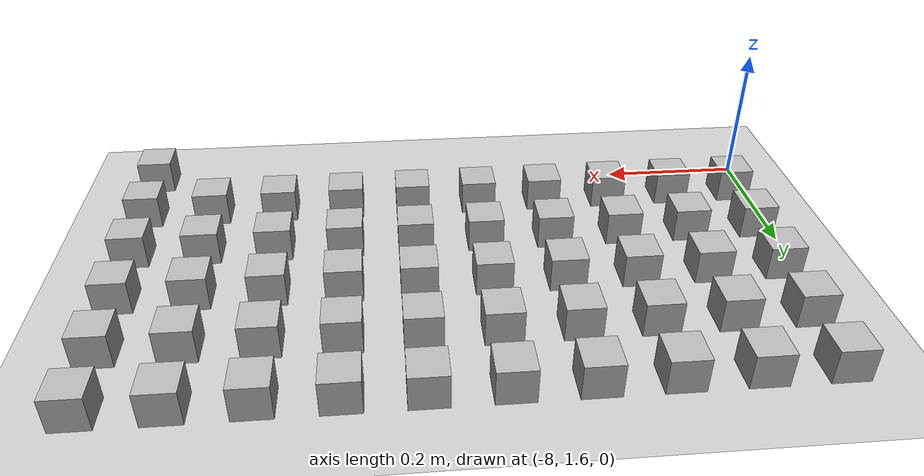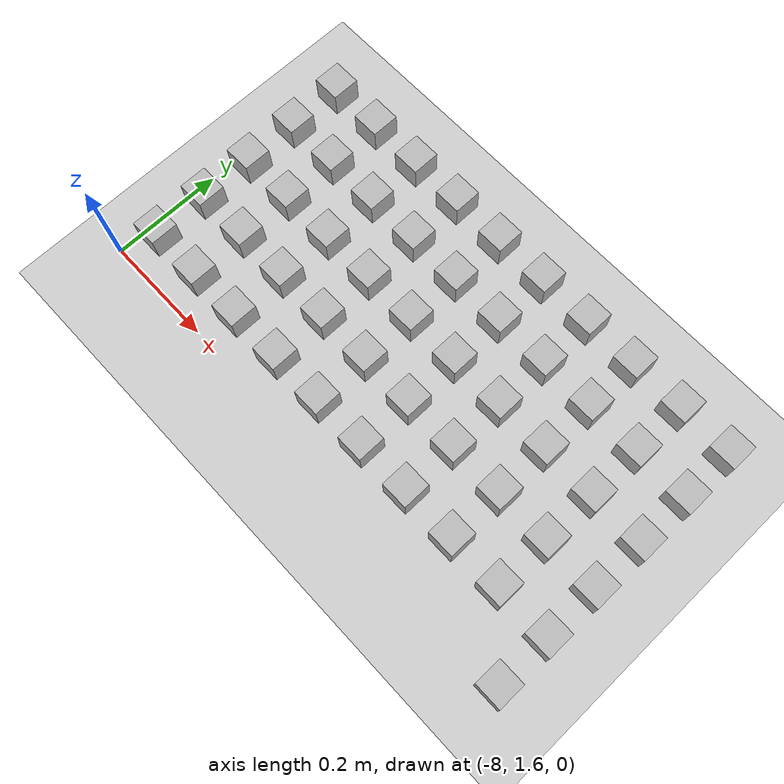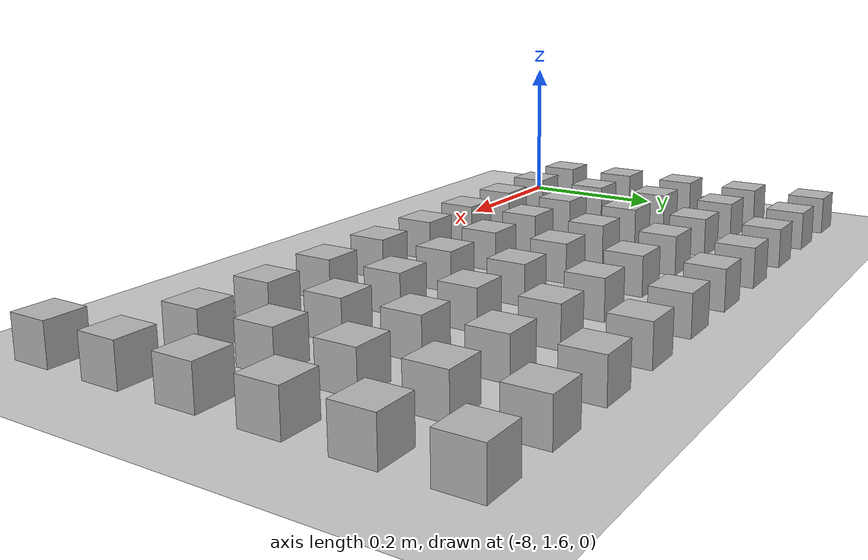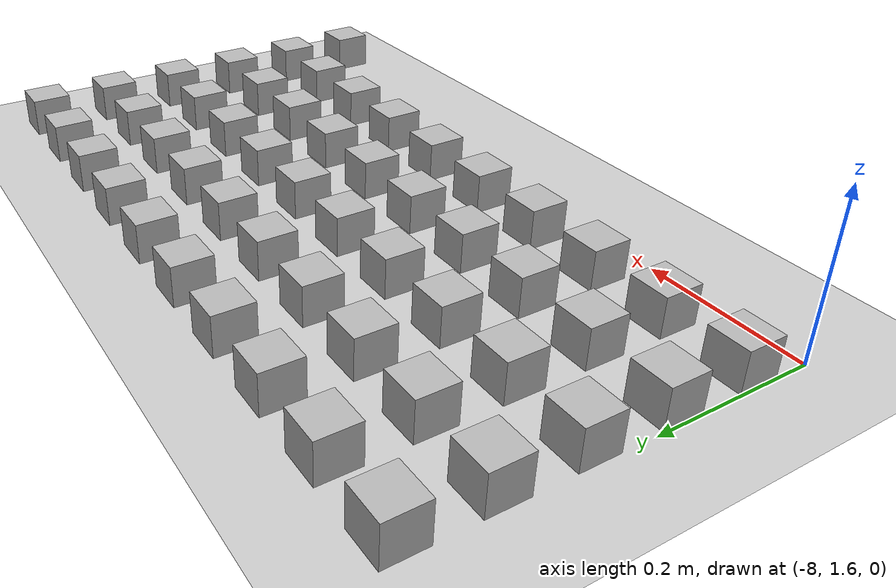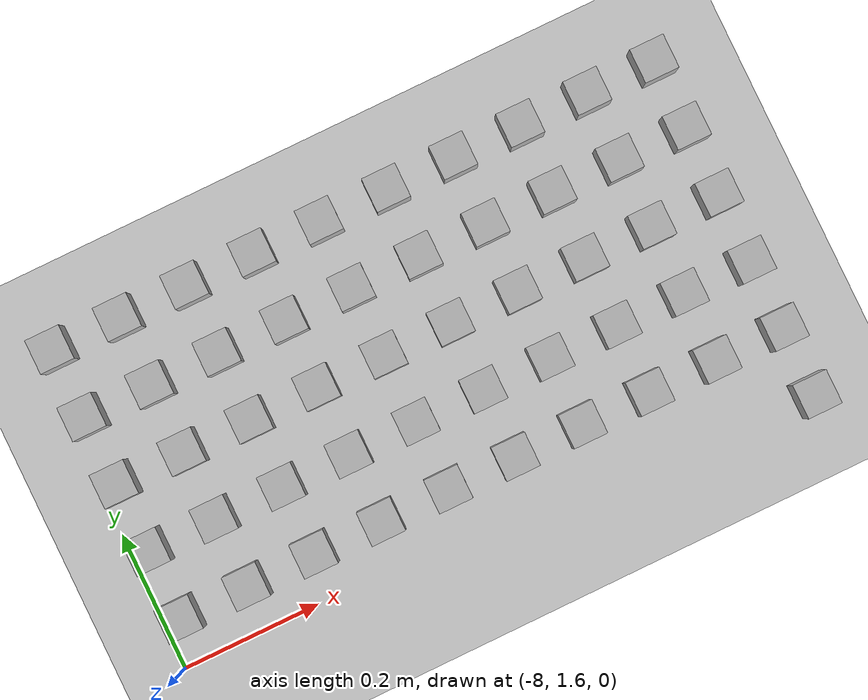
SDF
<sdf version="1.4">
 <world name="default">
  <model name="ground_plane">
   <static>1</static>
   <link name="link">
    <collision name="collision">
     <geometry><plane><normal>0 0 1</normal><size>100 100</size></plane></geometry>
     <surface><friction><ode><mu>100</mu><mu2>50</mu2></ode></friction></surface>
    </collision>
    <visual name="visual">
     <cast_shadows>0</cast_shadows>
     <geometry><plane><normal>0 0 1</normal><size>100 100</size></plane></geometry>
     <material>
      <script><uri>file://media/materials/scripts/gazebo.material</uri><name>Gazebo/Grey</name></script>
     </material>
    </visual>
    <velocity_decay><linear>0</linear><angular>0</angular></velocity_decay>
   </link>
  </model>
  <model name="at175">
   <static>0</static>
   <link name="link">
    <inertial>
     <mass>0.01</mass>
     <inertia><ixx>4e-05</ixx><ixy>0</ixy><ixz>0</ixz><iyy>4e-05</iyy><iyz>0</iyz><izz>4e-05</izz></inertia>
    </inertial>
    <visual name="visual">
     <geometry><box><size>0.05 0.05 0.05</size></box></geometry>
     <material>
      <script>
       <uri>model://at0/materials/scripts</uri>
       <uri>model://at0/materials/textures</uri>
       <name>at0/Diffuse</name>
      </script>
     </material>
    </visual>
    <collision name="collision">
     <geometry><box><size>0.05 0.05 0.05</size></box></geometry>
     <surface><friction><ode><mu>0.8</mu><mu2>0.7</mu2></ode></friction></surface>
    </collision>
    <velocity_decay><linear>0</linear><angular>0</angular></velocity_decay>
   </link>
   <pose>-7.07385 1.56515 0.025 0 -0 0</pose>
  </model>
  <model name="at182">
   <static>0</static>
   <link name="link">
    <inertial>
     <mass>0.01</mass>
     <inertia><ixx>4e-05</ixx><ixy>0</ixy><ixz>0</ixz><iyy>4e-05</iyy><iyz>0</iyz><izz>4e-05</izz></inertia>
    </inertial>
    <visual name="visual">
     <geometry><box><size>0.05 0.05 0.05</size></box></geometry>
     <material>
      <script>
       <uri>model://at0/materials/scripts</uri>
       <uri>model://at0/materials/textures</uri>
       <name>at0/Diffuse</name>
      </script>
     </material>
    </visual>
    <collision name="collision">
     <geometry><box><size>0.05 0.05 0.05</size></box></geometry>
     <surface><friction><ode><mu>0.8</mu><mu2>0.7</mu2></ode></friction></surface>
    </collision>
    <velocity_decay><linear>0</linear><angular>0</angular></velocity_decay>
   </link>
   <pose>-7.97385 1.66515 0.025 0 -0 0</pose>
  </model>
  <model name="at183">
   <static>0</static>
   <link name="link">
    <inertial>
     <mass>0.01</mass>
     <inertia><ixx>4e-05</ixx><ixy>0</ixy><ixz>0</ixz><iyy>4e-05</iyy><iyz>0</iyz><izz>4e-05</izz></inertia>
    </inertial>
    <visual name="visual">
     <geometry><box><size>0.05 0.05 0.05</size></box></geometry>
     <material>
      <script>
       <uri>model://at0/materials/scripts</uri>
       <uri>model://at0/materials/textures</uri>
       <name>at0/Diffuse</name>
      </script>
     </material>
    </visual>
    <collision name="collision">
     <geometry><box><size>0.05 0.05 0.05</size></box></geometry>
     <surface><friction><ode><mu>0.8</mu><mu2>0.7</mu2></ode></friction></surface>
    </collision>
    <velocity_decay><linear>0</linear><angular>0</angular></velocity_decay>
   </link>
   <pose>-7.87385 1.66515 0.025 0 -0 0</pose>
  </model>
  <model name="at184">
   <static>0</static>
   <link name="link">
    <inertial>
     <mass>0.01</mass>
     <inertia><ixx>4e-05</ixx><ixy>0</ixy><ixz>0</ixz><iyy>4e-05</iyy><iyz>0</iyz><izz>4e-05</izz></inertia>
    </inertial>
    <visual name="visual">
     <geometry><box><size>0.05 0.05 0.05</size></box></geometry>
     <material>
      <script>
       <uri>model://at0/materials/scripts</uri>
       <uri>model://at0/materials/textures</uri>
       <name>at0/Diffuse</name>
      </script>
     </material>
    </visual>
    <collision name="collision">
     <geometry><box><size>0.05 0.05 0.05</size></box></geometry>
     <surface><friction><ode><mu>0.8</mu><mu2>0.7</mu2></ode></friction></surface>
    </collision>
    <velocity_decay><linear>0</linear><angular>0</angular></velocity_decay>
   </link>
   <pose>-7.77385 1.66515 0.025 0 -0 0</pose>
  </model>
  <model name="at185">
   <static>0</static>
   <link name="link">
    <inertial>
     <mass>0.01</mass>
     <inertia><ixx>4e-05</ixx><ixy>0</ixy><ixz>0</ixz><iyy>4e-05</iyy><iyz>0</iyz><izz>4e-05</izz></inertia>
    </inertial>
    <visual name="visual">
     <geometry><box><size>0.05 0.05 0.05</size></box></geometry>
     <material>
      <script>
       <uri>model://at0/materials/scripts</uri>
       <uri>model://at0/materials/textures</uri>
       <name>at0/Diffuse</name>
      </script>
     </material>
    </visual>
    <collision name="collision">
     <geometry><box><size>0.05 0.05 0.05</size></box></geometry>
     <surface><friction><ode><mu>0.8</mu><mu2>0.7</mu2></ode></friction></surface>
    </collision>
    <velocity_decay><linear>0</linear><angular>0</angular></velocity_decay>
   </link>
   <pose>-7.67385 1.66515 0.025 0 -0 0</pose>
  </model>
  <model name="at186">
   <static>0</static>
   <link name="link">
    <inertial>
     <mass>0.01</mass>
     <inertia><ixx>4e-05</ixx><ixy>0</ixy><ixz>0</ixz><iyy>4e-05</iyy><iyz>0</iyz><izz>4e-05</izz></inertia>
    </inertial>
    <visual name="visual">
     <geometry><box><size>0.05 0.05 0.05</size></box></geometry>
     <material>
      <script>
       <uri>model://at0/materials/scripts</uri>
       <uri>model://at0/materials/textures</uri>
       <name>at0/Diffuse</name>
      </script>
     </material>
    </visual>
    <collision name="collision">
     <geometry><box><size>0.05 0.05 0.05</size></box></geometry>
     <surface><friction><ode><mu>0.8</mu><mu2>0.7</mu2></ode></friction></surface>
    </collision>
    <velocity_decay><linear>0</linear><angular>0</angular></velocity_decay>
   </link>
   <pose>-7.57385 1.66515 0.025 0 -0 0</pose>
  </model>
  <model name="at187">
   <static>0</static>
   <link name="link">
    <inertial>
     <mass>0.01</mass>
     <inertia><ixx>4e-05</ixx><ixy>0</ixy><ixz>0</ixz><iyy>4e-05</iyy><iyz>0</iyz><izz>4e-05</izz></inertia>
    </inertial>
    <visual name="visual">
     <geometry><box><size>0.05 0.05 0.05</size></box></geometry>
     <material>
      <script>
       <uri>model://at0/materials/scripts</uri>
       <uri>model://at0/materials/textures</uri>
       <name>at0/Diffuse</name>
      </script>
     </material>
    </visual>
    <collision name="collision">
     <geometry><box><size>0.05 0.05 0.05</size></box></geometry>
     <surface><friction><ode><mu>0.8</mu><mu2>0.7</mu2></ode></friction></surface>
    </collision>
    <velocity_decay><linear>0</linear><angular>0</angular></velocity_decay>
   </link>
   <pose>-7.47385 1.66515 0.025 0 -0 0</pose>
  </model>
  <model name="at188">
   <static>0</static>
   <link name="link">
    <inertial>
     <mass>0.01</mass>
     <inertia><ixx>4e-05</ixx><ixy>0</ixy><ixz>0</ixz><iyy>4e-05</iyy><iyz>0</iyz><izz>4e-05</izz></inertia>
    </inertial>
    <visual name="visual">
     <geometry><box><size>0.05 0.05 0.05</size></box></geometry>
     <material>
      <script>
       <uri>model://at0/materials/scripts</uri>
       <uri>model://at0/materials/textures</uri>
       <name>at0/Diffuse</name>
      </script>
     </material>
    </visual>
    <collision name="collision">
     <geometry><box><size>0.05 0.05 0.05</size></box></geometry>
     <surface><friction><ode><mu>0.8</mu><mu2>0.7</mu2></ode></friction></surface>
    </collision>
    <velocity_decay><linear>0</linear><angular>0</angular></velocity_decay>
   </link>
   <pose>-7.37385 1.66515 0.025 0 -0 0</pose>
  </model>
  <model name="at189">
   <static>0</static>
   <link name="link">
    <inertial>
     <mass>0.01</mass>
     <inertia><ixx>4e-05</ixx><ixy>0</ixy><ixz>0</ixz><iyy>4e-05</iyy><iyz>0</iyz><izz>4e-05</izz></inertia>
    </inertial>
    <visual name="visual">
     <geometry><box><size>0.05 0.05 0.05</size></box></geometry>
     <material>
      <script>
       <uri>model://at0/materials/scripts</uri>
       <uri>model://at0/materials/textures</uri>
       <name>at0/Diffuse</name>
      </script>
     </material>
    </visual>
    <collision name="collision">
     <geometry><box><size>0.05 0.05 0.05</size></box></geometry>
     <surface><friction><ode><mu>0.8</mu><mu2>0.7</mu2></ode></friction></surface>
    </collision>
    <velocity_decay><linear>0</linear><angular>0</angular></velocity_decay>
   </link>
   <pose>-7.27385 1.66515 0.025 0 -0 0</pose>
  </model>
  <model name="at190">
   <static>0</static>
   <link name="link">
    <inertial>
     <mass>0.01</mass>
     <inertia><ixx>4e-05</ixx><ixy>0</ixy><ixz>0</ixz><iyy>4e-05</iyy><iyz>0</iyz><izz>4e-05</izz></inertia>
    </inertial>
    <visual name="visual">
     <geometry><box><size>0.05 0.05 0.05</size></box></geometry>
     <material>
      <script>
       <uri>model://at0/materials/scripts</uri>
       <uri>model://at0/materials/textures</uri>
       <name>at0/Diffuse</name>
      </script>
     </material>
    </visual>
    <collision name="collision">
     <geometry><box><size>0.05 0.05 0.05</size></box></geometry>
     <surface><friction><ode><mu>0.8</mu><mu2>0.7</mu2></ode></friction></surface>
    </collision>
    <velocity_decay><linear>0</linear><angular>0</angular></velocity_decay>
   </link>
   <pose>-7.17385 1.66515 0.025 0 -0 0</pose>
  </model>
  <model name="at191">
   <static>0</static>
   <link name="link">
    <inertial>
     <mass>0.01</mass>
     <inertia><ixx>4e-05</ixx><ixy>0</ixy><ixz>0</ixz><iyy>4e-05</iyy><iyz>0</iyz><izz>4e-05</izz></inertia>
    </inertial>
    <visual name="visual">
     <geometry><box><size>0.05 0.05 0.05</size></box></geometry>
     <material>
      <script>
       <uri>model://at0/materials/scripts</uri>
       <uri>model://at0/materials/textures</uri>
       <name>at0/Diffuse</name>
      </script>
     </material>
    </visual>
    <collision name="collision">
     <geometry><box><size>0.05 0.05 0.05</size></box></geometry>
     <surface><friction><ode><mu>0.8</mu><mu2>0.7</mu2></ode></friction></surface>
    </collision>
    <velocity_decay><linear>0</linear><angular>0</angular></velocity_decay>
   </link>
   <pose>-7.07385 1.66515 0.025 0 -0 0</pose>
  </model>
  <model name="at198">
   <static>0</static>
   <link name="link">
    <inertial>
     <mass>0.01</mass>
     <inertia><ixx>4e-05</ixx><ixy>0</ixy><ixz>0</ixz><iyy>4e-05</iyy><iyz>0</iyz><izz>4e-05</izz></inertia>
    </inertial>
    <visual name="visual">
     <geometry><box><size>0.05 0.05 0.05</size></box></geometry>
     <material>
      <script>
       <uri>model://at0/materials/scripts</uri>
       <uri>model://at0/materials/textures</uri>
       <name>at0/Diffuse</name>
      </script>
     </material>
    </visual>
    <collision name="collision">
     <geometry><box><size>0.05 0.05 0.05</size></box></geometry>
     <surface><friction><ode><mu>0.8</mu><mu2>0.7</mu2></ode></friction></surface>
    </collision>
    <velocity_decay><linear>0</linear><angular>0</angular></velocity_decay>
   </link>
   <pose>-7.97385 1.76515 0.025 0 -0 0</pose>
  </model>
  <model name="at199">
   <static>0</static>
   <link name="link">
    <inertial>
     <mass>0.01</mass>
     <inertia><ixx>4e-05</ixx><ixy>0</ixy><ixz>0</ixz><iyy>4e-05</iyy><iyz>0</iyz><izz>4e-05</izz></inertia>
    </inertial>
    <visual name="visual">
     <geometry><box><size>0.05 0.05 0.05</size></box></geometry>
     <material>
      <script>
       <uri>model://at0/materials/scripts</uri>
       <uri>model://at0/materials/textures</uri>
       <name>at0/Diffuse</name>
      </script>
     </material>
    </visual>
    <collision name="collision">
     <geometry><box><size>0.05 0.05 0.05</size></box></geometry>
     <surface><friction><ode><mu>0.8</mu><mu2>0.7</mu2></ode></friction></surface>
    </collision>
    <velocity_decay><linear>0</linear><angular>0</angular></velocity_decay>
   </link>
   <pose>-7.87385 1.76515 0.025 0 -0 0</pose>
  </model>
  <model name="at200">
   <static>0</static>
   <link name="link">
    <inertial>
     <mass>0.01</mass>
     <inertia><ixx>4e-05</ixx><ixy>0</ixy><ixz>0</ixz><iyy>4e-05</iyy><iyz>0</iyz><izz>4e-05</izz></inertia>
    </inertial>
    <visual name="visual">
     <geometry><box><size>0.05 0.05 0.05</size></box></geometry>
     <material>
      <script>
       <uri>model://at0/materials/scripts</uri>
       <uri>model://at0/materials/textures</uri>
       <name>at0/Diffuse</name>
      </script>
     </material>
    </visual>
    <collision name="collision">
     <geometry><box><size>0.05 0.05 0.05</size></box></geometry>
     <surface><friction><ode><mu>0.8</mu><mu2>0.7</mu2></ode></friction></surface>
    </collision>
    <velocity_decay><linear>0</linear><angular>0</angular></velocity_decay>
   </link>
   <pose>-7.77385 1.76515 0.025 0 -0 0</pose>
  </model>
  <model name="at201">
   <static>0</static>
   <link name="link">
    <inertial>
     <mass>0.01</mass>
     <inertia><ixx>4e-05</ixx><ixy>0</ixy><ixz>0</ixz><iyy>4e-05</iyy><iyz>0</iyz><izz>4e-05</izz></inertia>
    </inertial>
    <visual name="visual">
     <geometry><box><size>0.05 0.05 0.05</size></box></geometry>
     <material>
      <script>
       <uri>model://at0/materials/scripts</uri>
       <uri>model://at0/materials/textures</uri>
       <name>at0/Diffuse</name>
      </script>
     </material>
    </visual>
    <collision name="collision">
     <geometry><box><size>0.05 0.05 0.05</size></box></geometry>
     <surface><friction><ode><mu>0.8</mu><mu2>0.7</mu2></ode></friction></surface>
    </collision>
    <velocity_decay><linear>0</linear><angular>0</angular></velocity_decay>
   </link>
   <pose>-7.67385 1.76515 0.025 0 -0 0</pose>
  </model>
  <model name="at202">
   <static>0</static>
   <link name="link">
    <inertial>
     <mass>0.01</mass>
     <inertia><ixx>4e-05</ixx><ixy>0</ixy><ixz>0</ixz><iyy>4e-05</iyy><iyz>0</iyz><izz>4e-05</izz></inertia>
    </inertial>
    <visual name="visual">
     <geometry><box><size>0.05 0.05 0.05</size></box></geometry>
     <material>
      <script>
       <uri>model://at0/materials/scripts</uri>
       <uri>model://at0/materials/textures</uri>
       <name>at0/Diffuse</name>
      </script>
     </material>
    </visual>
    <collision name="collision">
     <geometry><box><size>0.05 0.05 0.05</size></box></geometry>
     <surface><friction><ode><mu>0.8</mu><mu2>0.7</mu2></ode></friction></surface>
    </collision>
    <velocity_decay><linear>0</linear><angular>0</angular></velocity_decay>
   </link>
   <pose>-7.57385 1.76515 0.025 0 -0 0</pose>
  </model>
  <model name="at203">
   <static>0</static>
   <link name="link">
    <inertial>
     <mass>0.01</mass>
     <inertia><ixx>4e-05</ixx><ixy>0</ixy><ixz>0</ixz><iyy>4e-05</iyy><iyz>0</iyz><izz>4e-05</izz></inertia>
    </inertial>
    <visual name="visual">
     <geometry><box><size>0.05 0.05 0.05</size></box></geometry>
     <material>
      <script>
       <uri>model://at0/materials/scripts</uri>
       <uri>model://at0/materials/textures</uri>
       <name>at0/Diffuse</name>
      </script>
     </material>
    </visual>
    <collision name="collision">
     <geometry><box><size>0.05 0.05 0.05</size></box></geometry>
     <surface><friction><ode><mu>0.8</mu><mu2>0.7</mu2></ode></friction></surface>
    </collision>
    <velocity_decay><linear>0</linear><angular>0</angular></velocity_decay>
   </link>
   <pose>-7.47385 1.76515 0.025 0 -0 0</pose>
  </model>
  <model name="at204">
   <static>0</static>
   <link name="link">
    <inertial>
     <mass>0.01</mass>
     <inertia><ixx>4e-05</ixx><ixy>0</ixy><ixz>0</ixz><iyy>4e-05</iyy><iyz>0</iyz><izz>4e-05</izz></inertia>
    </inertial>
    <visual name="visual">
     <geometry><box><size>0.05 0.05 0.05</size></box></geometry>
     <material>
      <script>
       <uri>model://at0/materials/scripts</uri>
       <uri>model://at0/materials/textures</uri>
       <name>at0/Diffuse</name>
      </script>
     </material>
    </visual>
    <collision name="collision">
     <geometry><box><size>0.05 0.05 0.05</size></box></geometry>
     <surface><friction><ode><mu>0.8</mu><mu2>0.7</mu2></ode></friction></surface>
    </collision>
    <velocity_decay><linear>0</linear><angular>0</angular></velocity_decay>
   </link>
   <pose>-7.37385 1.76515 0.025 0 -0 0</pose>
  </model>
  <model name="at205">
   <static>0</static>
   <link name="link">
    <inertial>
     <mass>0.01</mass>
     <inertia><ixx>4e-05</ixx><ixy>0</ixy><ixz>0</ixz><iyy>4e-05</iyy><iyz>0</iyz><izz>4e-05</izz></inertia>
    </inertial>
    <visual name="visual">
     <geometry><box><size>0.05 0.05 0.05</size></box></geometry>
     <material>
      <script>
       <uri>model://at0/materials/scripts</uri>
       <uri>model://at0/materials/textures</uri>
       <name>at0/Diffuse</name>
      </script>
     </material>
    </visual>
    <collision name="collision">
     <geometry><box><size>0.05 0.05 0.05</size></box></geometry>
     <surface><friction><ode><mu>0.8</mu><mu2>0.7</mu2></ode></friction></surface>
    </collision>
    <velocity_decay><linear>0</linear><angular>0</angular></velocity_decay>
   </link>
   <pose>-7.27385 1.76515 0.025 0 -0 0</pose>
  </model>
  <model name="at206">
   <static>0</static>
   <link name="link">
    <inertial>
     <mass>0.01</mass>
     <inertia><ixx>4e-05</ixx><ixy>0</ixy><ixz>0</ixz><iyy>4e-05</iyy><iyz>0</iyz><izz>4e-05</izz></inertia>
    </inertial>
    <visual name="visual">
     <geometry><box><size>0.05 0.05 0.05</size></box></geometry>
     <material>
      <script>
       <uri>model://at0/materials/scripts</uri>
       <uri>model://at0/materials/textures</uri>
       <name>at0/Diffuse</name>
      </script>
     </material>
    </visual>
    <collision name="collision">
     <geometry><box><size>0.05 0.05 0.05</size></box></geometry>
     <surface><friction><ode><mu>0.8</mu><mu2>0.7</mu2></ode></friction></surface>
    </collision>
    <velocity_decay><linear>0</linear><angular>0</angular></velocity_decay>
   </link>
   <pose>-7.17385 1.76515 0.025 0 -0 0</pose>
  </model>
  <model name="at207">
   <static>0</static>
   <link name="link">
    <inertial>
     <mass>0.01</mass>
     <inertia><ixx>4e-05</ixx><ixy>0</ixy><ixz>0</ixz><iyy>4e-05</iyy><iyz>0</iyz><izz>4e-05</izz></inertia>
    </inertial>
    <visual name="visual">
     <geometry><box><size>0.05 0.05 0.05</size></box></geometry>
     <material>
      <script>
       <uri>model://at0/materials/scripts</uri>
       <uri>model://at0/materials/textures</uri>
       <name>at0/Diffuse</name>
      </script>
     </material>
    </visual>
    <collision name="collision">
     <geometry><box><size>0.05 0.05 0.05</size></box></geometry>
     <surface><friction><ode><mu>0.8</mu><mu2>0.7</mu2></ode></friction></surface>
    </collision>
    <velocity_decay><linear>0</linear><angular>0</angular></velocity_decay>
   </link>
   <pose>-7.07385 1.76515 0.025 0 -0 0</pose>
  </model>
  <model name="at214">
   <static>0</static>
   <link name="link">
    <inertial>
     <mass>0.01</mass>
     <inertia><ixx>4e-05</ixx><ixy>0</ixy><ixz>0</ixz><iyy>4e-05</iyy><iyz>0</iyz><izz>4e-05</izz></inertia>
    </inertial>
    <visual name="visual">
     <geometry><box><size>0.05 0.05 0.05</size></box></geometry>
     <material>
      <script>
       <uri>model://at0/materials/scripts</uri>
       <uri>model://at0/materials/textures</uri>
       <name>at0/Diffuse</name>
      </script>
     </material>
    </visual>
    <collision name="collision">
     <geometry><box><size>0.05 0.05 0.05</size></box></geometry>
     <surface><friction><ode><mu>0.8</mu><mu2>0.7</mu2></ode></friction></surface>
    </collision>
    <velocity_decay><linear>0</linear><angular>0</angular></velocity_decay>
   </link>
   <pose>-7.97385 1.86515 0.025 0 -0 0</pose>
  </model>
  <model name="at215">
   <static>0</static>
   <link name="link">
    <inertial>
     <mass>0.01</mass>
     <inertia><ixx>4e-05</ixx><ixy>0</ixy><ixz>0</ixz><iyy>4e-05</iyy><iyz>0</iyz><izz>4e-05</izz></inertia>
    </inertial>
    <visual name="visual">
     <geometry><box><size>0.05 0.05 0.05</size></box></geometry>
     <material>
      <script>
       <uri>model://at0/materials/scripts</uri>
       <uri>model://at0/materials/textures</uri>
       <name>at0/Diffuse</name>
      </script>
     </material>
    </visual>
    <collision name="collision">
     <geometry><box><size>0.05 0.05 0.05</size></box></geometry>
     <surface><friction><ode><mu>0.8</mu><mu2>0.7</mu2></ode></friction></surface>
    </collision>
    <velocity_decay><linear>0</linear><angular>0</angular></velocity_decay>
   </link>
   <pose>-7.87385 1.86515 0.025 0 -0 0</pose>
  </model>
  <model name="at216">
   <static>0</static>
   <link name="link">
    <inertial>
     <mass>0.01</mass>
     <inertia><ixx>4e-05</ixx><ixy>0</ixy><ixz>0</ixz><iyy>4e-05</iyy><iyz>0</iyz><izz>4e-05</izz></inertia>
    </inertial>
    <visual name="visual">
     <geometry><box><size>0.05 0.05 0.05</size></box></geometry>
     <material>
      <script>
       <uri>model://at0/materials/scripts</uri>
       <uri>model://at0/materials/textures</uri>
       <name>at0/Diffuse</name>
      </script>
     </material>
    </visual>
    <collision name="collision">
     <geometry><box><size>0.05 0.05 0.05</size></box></geometry>
     <surface><friction><ode><mu>0.8</mu><mu2>0.7</mu2></ode></friction></surface>
    </collision>
    <velocity_decay><linear>0</linear><angular>0</angular></velocity_decay>
   </link>
   <pose>-7.77385 1.86515 0.025 0 -0 0</pose>
  </model>
  <model name="at217">
   <static>0</static>
   <link name="link">
    <inertial>
     <mass>0.01</mass>
     <inertia><ixx>4e-05</ixx><ixy>0</ixy><ixz>0</ixz><iyy>4e-05</iyy><iyz>0</iyz><izz>4e-05</izz></inertia>
    </inertial>
    <visual name="visual">
     <geometry><box><size>0.05 0.05 0.05</size></box></geometry>
     <material>
      <script>
       <uri>model://at0/materials/scripts</uri>
       <uri>model://at0/materials/textures</uri>
       <name>at0/Diffuse</name>
      </script>
     </material>
    </visual>
    <collision name="collision">
     <geometry><box><size>0.05 0.05 0.05</size></box></geometry>
     <surface><friction><ode><mu>0.8</mu><mu2>0.7</mu2></ode></friction></surface>
    </collision>
    <velocity_decay><linear>0</linear><angular>0</angular></velocity_decay>
   </link>
   <pose>-7.67385 1.86515 0.025 0 -0 0</pose>
  </model>
  <model name="at218">
   <static>0</static>
   <link name="link">
    <inertial>
     <mass>0.01</mass>
     <inertia><ixx>4e-05</ixx><ixy>0</ixy><ixz>0</ixz><iyy>4e-05</iyy><iyz>0</iyz><izz>4e-05</izz></inertia>
    </inertial>
    <visual name="visual">
     <geometry><box><size>0.05 0.05 0.05</size></box></geometry>
     <material>
      <script>
       <uri>model://at0/materials/scripts</uri>
       <uri>model://at0/materials/textures</uri>
       <name>at0/Diffuse</name>
      </script>
     </material>
    </visual>
    <collision name="collision">
     <geometry><box><size>0.05 0.05 0.05</size></box></geometry>
     <surface><friction><ode><mu>0.8</mu><mu2>0.7</mu2></ode></friction></surface>
    </collision>
    <velocity_decay><linear>0</linear><angular>0</angular></velocity_decay>
   </link>
   <pose>-7.57385 1.86515 0.025 0 -0 0</pose>
  </model>
  <model name="at219">
   <static>0</static>
   <link name="link">
    <inertial>
     <mass>0.01</mass>
     <inertia><ixx>4e-05</ixx><ixy>0</ixy><ixz>0</ixz><iyy>4e-05</iyy><iyz>0</iyz><izz>4e-05</izz></inertia>
    </inertial>
    <visual name="visual">
     <geometry><box><size>0.05 0.05 0.05</size></box></geometry>
     <material>
      <script>
       <uri>model://at0/materials/scripts</uri>
       <uri>model://at0/materials/textures</uri>
       <name>at0/Diffuse</name>
      </script>
     </material>
    </visual>
    <collision name="collision">
     <geometry><box><size>0.05 0.05 0.05</size></box></geometry>
     <surface><friction><ode><mu>0.8</mu><mu2>0.7</mu2></ode></friction></surface>
    </collision>
    <velocity_decay><linear>0</linear><angular>0</angular></velocity_decay>
   </link>
   <pose>-7.47385 1.86515 0.025 0 -0 0</pose>
  </model>
  <model name="at220">
   <static>0</static>
   <link name="link">
    <inertial>
     <mass>0.01</mass>
     <inertia><ixx>4e-05</ixx><ixy>0</ixy><ixz>0</ixz><iyy>4e-05</iyy><iyz>0</iyz><izz>4e-05</izz></inertia>
    </inertial>
    <visual name="visual">
     <geometry><box><size>0.05 0.05 0.05</size></box></geometry>
     <material>
      <script>
       <uri>model://at0/materials/scripts</uri>
       <uri>model://at0/materials/textures</uri>
       <name>at0/Diffuse</name>
      </script>
     </material>
    </visual>
    <collision name="collision">
     <geometry><box><size>0.05 0.05 0.05</size></box></geometry>
     <surface><friction><ode><mu>0.8</mu><mu2>0.7</mu2></ode></friction></surface>
    </collision>
    <velocity_decay><linear>0</linear><angular>0</angular></velocity_decay>
   </link>
   <pose>-7.37385 1.86515 0.025 0 -0 0</pose>
  </model>
  <model name="at221">
   <static>0</static>
   <link name="link">
    <inertial>
     <mass>0.01</mass>
     <inertia><ixx>4e-05</ixx><ixy>0</ixy><ixz>0</ixz><iyy>4e-05</iyy><iyz>0</iyz><izz>4e-05</izz></inertia>
    </inertial>
    <visual name="visual">
     <geometry><box><size>0.05 0.05 0.05</size></box></geometry>
     <material>
      <script>
       <uri>model://at0/materials/scripts</uri>
       <uri>model://at0/materials/textures</uri>
       <name>at0/Diffuse</name>
      </script>
     </material>
    </visual>
    <collision name="collision">
     <geometry><box><size>0.05 0.05 0.05</size></box></geometry>
     <surface><friction><ode><mu>0.8</mu><mu2>0.7</mu2></ode></friction></surface>
    </collision>
    <velocity_decay><linear>0</linear><angular>0</angular></velocity_decay>
   </link>
   <pose>-7.27385 1.86515 0.025 0 -0 0</pose>
  </model>
  <model name="at222">
   <static>0</static>
   <link name="link">
    <inertial>
     <mass>0.01</mass>
     <inertia><ixx>4e-05</ixx><ixy>0</ixy><ixz>0</ixz><iyy>4e-05</iyy><iyz>0</iyz><izz>4e-05</izz></inertia>
    </inertial>
    <visual name="visual">
     <geometry><box><size>0.05 0.05 0.05</size></box></geometry>
     <material>
      <script>
       <uri>model://at0/materials/scripts</uri>
       <uri>model://at0/materials/textures</uri>
       <name>at0/Diffuse</name>
      </script>
     </material>
    </visual>
    <collision name="collision">
     <geometry><box><size>0.05 0.05 0.05</size></box></geometry>
     <surface><friction><ode><mu>0.8</mu><mu2>0.7</mu2></ode></friction></surface>
    </collision>
    <velocity_decay><linear>0</linear><angular>0</angular></velocity_decay>
   </link>
   <pose>-7.17385 1.86515 0.025 0 -0 0</pose>
  </model>
  <model name="at223">
   <static>0</static>
   <link name="link">
    <inertial>
     <mass>0.01</mass>
     <inertia><ixx>4e-05</ixx><ixy>0</ixy><ixz>0</ixz><iyy>4e-05</iyy><iyz>0</iyz><izz>4e-05</izz></inertia>
    </inertial>
    <visual name="visual">
     <geometry><box><size>0.05 0.05 0.05</size></box></geometry>
     <material>
      <script>
       <uri>model://at0/materials/scripts</uri>
       <uri>model://at0/materials/textures</uri>
       <name>at0/Diffuse</name>
      </script>
     </material>
    </visual>
    <collision name="collision">
     <geometry><box><size>0.05 0.05 0.05</size></box></geometry>
     <surface><friction><ode><mu>0.8</mu><mu2>0.7</mu2></ode></friction></surface>
    </collision>
    <velocity_decay><linear>0</linear><angular>0</angular></velocity_decay>
   </link>
   <pose>-7.07385 1.86515 0.025 0 -0 0</pose>
  </model>
  <model name="at230">
   <static>0</static>
   <link name="link">
    <inertial>
     <mass>0.01</mass>
     <inertia><ixx>4e-05</ixx><ixy>0</ixy><ixz>0</ixz><iyy>4e-05</iyy><iyz>0</iyz><izz>4e-05</izz></inertia>
    </inertial>
    <visual name="visual">
     <geometry><box><size>0.05 0.05 0.05</size></box></geometry>
     <material>
      <script>
       <uri>model://at0/materials/scripts</uri>
       <uri>model://at0/materials/textures</uri>
       <name>at0/Diffuse</name>
      </script>
     </material>
    </visual>
    <collision name="collision">
     <geometry><box><size>0.05 0.05 0.05</size></box></geometry>
     <surface><friction><ode><mu>0.8</mu><mu2>0.7</mu2></ode></friction></surface>
    </collision>
    <velocity_decay><linear>0</linear><angular>0</angular></velocity_decay>
   </link>
   <pose>-7.97385 1.96515 0.025 0 -0 0</pose>
  </model>
  <model name="at231">
   <static>0</static>
   <link name="link">
    <inertial>
     <mass>0.01</mass>
     <inertia><ixx>4e-05</ixx><ixy>0</ixy><ixz>0</ixz><iyy>4e-05</iyy><iyz>0</iyz><izz>4e-05</izz></inertia>
    </inertial>
    <visual name="visual">
     <geometry><box><size>0.05 0.05 0.05</size></box></geometry>
     <material>
      <script>
       <uri>model://at0/materials/scripts</uri>
       <uri>model://at0/materials/textures</uri>
       <name>at0/Diffuse</name>
      </script>
     </material>
    </visual>
    <collision name="collision">
     <geometry><box><size>0.05 0.05 0.05</size></box></geometry>
     <surface><friction><ode><mu>0.8</mu><mu2>0.7</mu2></ode></friction></surface>
    </collision>
    <velocity_decay><linear>0</linear><angular>0</angular></velocity_decay>
   </link>
   <pose>-7.87385 1.96515 0.025 0 -0 0</pose>
  </model>
  <model name="at232">
   <static>0</static>
   <link name="link">
    <inertial>
     <mass>0.01</mass>
     <inertia><ixx>4e-05</ixx><ixy>0</ixy><ixz>0</ixz><iyy>4e-05</iyy><iyz>0</iyz><izz>4e-05</izz></inertia>
    </inertial>
    <visual name="visual">
     <geometry><box><size>0.05 0.05 0.05</size></box></geometry>
     <material>
      <script>
       <uri>model://at0/materials/scripts</uri>
       <uri>model://at0/materials/textures</uri>
       <name>at0/Diffuse</name>
      </script>
     </material>
    </visual>
    <collision name="collision">
     <geometry><box><size>0.05 0.05 0.05</size></box></geometry>
     <surface><friction><ode><mu>0.8</mu><mu2>0.7</mu2></ode></friction></surface>
    </collision>
    <velocity_decay><linear>0</linear><angular>0</angular></velocity_decay>
   </link>
   <pose>-7.77385 1.96515 0.025 0 -0 0</pose>
  </model>
  <model name="at233">
   <static>0</static>
   <link name="link">
    <inertial>
     <mass>0.01</mass>
     <inertia><ixx>4e-05</ixx><ixy>0</ixy><ixz>0</ixz><iyy>4e-05</iyy><iyz>0</iyz><izz>4e-05</izz></inertia>
    </inertial>
    <visual name="visual">
     <geometry><box><size>0.05 0.05 0.05</size></box></geometry>
     <material>
      <script>
       <uri>model://at0/materials/scripts</uri>
       <uri>model://at0/materials/textures</uri>
       <name>at0/Diffuse</name>
      </script>
     </material>
    </visual>
    <collision name="collision">
     <geometry><box><size>0.05 0.05 0.05</size></box></geometry>
     <surface><friction><ode><mu>0.8</mu><mu2>0.7</mu2></ode></friction></surface>
    </collision>
    <velocity_decay><linear>0</linear><angular>0</angular></velocity_decay>
   </link>
   <pose>-7.67385 1.96515 0.025 0 -0 0</pose>
  </model>
  <model name="at234">
   <static>0</static>
   <link name="link">
    <inertial>
     <mass>0.01</mass>
     <inertia><ixx>4e-05</ixx><ixy>0</ixy><ixz>0</ixz><iyy>4e-05</iyy><iyz>0</iyz><izz>4e-05</izz></inertia>
    </inertial>
    <visual name="visual">
     <geometry><box><size>0.05 0.05 0.05</size></box></geometry>
     <material>
      <script>
       <uri>model://at0/materials/scripts</uri>
       <uri>model://at0/materials/textures</uri>
       <name>at0/Diffuse</name>
      </script>
     </material>
    </visual>
    <collision name="collision">
     <geometry><box><size>0.05 0.05 0.05</size></box></geometry>
     <surface><friction><ode><mu>0.8</mu><mu2>0.7</mu2></ode></friction></surface>
    </collision>
    <velocity_decay><linear>0</linear><angular>0</angular></velocity_decay>
   </link>
   <pose>-7.57385 1.96515 0.025 0 -0 0</pose>
  </model>
  <model name="at235">
   <static>0</static>
   <link name="link">
    <inertial>
     <mass>0.01</mass>
     <inertia><ixx>4e-05</ixx><ixy>0</ixy><ixz>0</ixz><iyy>4e-05</iyy><iyz>0</iyz><izz>4e-05</izz></inertia>
    </inertial>
    <visual name="visual">
     <geometry><box><size>0.05 0.05 0.05</size></box></geometry>
     <material>
      <script>
       <uri>model://at0/materials/scripts</uri>
       <uri>model://at0/materials/textures</uri>
       <name>at0/Diffuse</name>
      </script>
     </material>
    </visual>
    <collision name="collision">
     <geometry><box><size>0.05 0.05 0.05</size></box></geometry>
     <surface><friction><ode><mu>0.8</mu><mu2>0.7</mu2></ode></friction></surface>
    </collision>
    <velocity_decay><linear>0</linear><angular>0</angular></velocity_decay>
   </link>
   <pose>-7.47385 1.96515 0.025 0 -0 0</pose>
  </model>
  <model name="at236">
   <static>0</static>
   <link name="link">
    <inertial>
     <mass>0.01</mass>
     <inertia><ixx>4e-05</ixx><ixy>0</ixy><ixz>0</ixz><iyy>4e-05</iyy><iyz>0</iyz><izz>4e-05</izz></inertia>
    </inertial>
    <visual name="visual">
     <geometry><box><size>0.05 0.05 0.05</size></box></geometry>
     <material>
      <script>
       <uri>model://at0/materials/scripts</uri>
       <uri>model://at0/materials/textures</uri>
       <name>at0/Diffuse</name>
      </script>
     </material>
    </visual>
    <collision name="collision">
     <geometry><box><size>0.05 0.05 0.05</size></box></geometry>
     <surface><friction><ode><mu>0.8</mu><mu2>0.7</mu2></ode></friction></surface>
    </collision>
    <velocity_decay><linear>0</linear><angular>0</angular></velocity_decay>
   </link>
   <pose>-7.37385 1.96515 0.025 0 -0 0</pose>
  </model>
  <model name="at237">
   <static>0</static>
   <link name="link">
    <inertial>
     <mass>0.01</mass>
     <inertia><ixx>4e-05</ixx><ixy>0</ixy><ixz>0</ixz><iyy>4e-05</iyy><iyz>0</iyz><izz>4e-05</izz></inertia>
    </inertial>
    <visual name="visual">
     <geometry><box><size>0.05 0.05 0.05</size></box></geometry>
     <material>
      <script>
       <uri>model://at0/materials/scripts</uri>
       <uri>model://at0/materials/textures</uri>
       <name>at0/Diffuse</name>
      </script>
     </material>
    </visual>
    <collision name="collision">
     <geometry><box><size>0.05 0.05 0.05</size></box></geometry>
     <surface><friction><ode><mu>0.8</mu><mu2>0.7</mu2></ode></friction></surface>
    </collision>
    <velocity_decay><linear>0</linear><angular>0</angular></velocity_decay>
   </link>
   <pose>-7.27385 1.96515 0.025 0 -0 0</pose>
  </model>
  <model name="at238">
   <static>0</static>
   <link name="link">
    <inertial>
     <mass>0.01</mass>
     <inertia><ixx>4e-05</ixx><ixy>0</ixy><ixz>0</ixz><iyy>4e-05</iyy><iyz>0</iyz><izz>4e-05</izz></inertia>
    </inertial>
    <visual name="visual">
     <geometry><box><size>0.05 0.05 0.05</size></box></geometry>
     <material>
      <script>
       <uri>model://at0/materials/scripts</uri>
       <uri>model://at0/materials/textures</uri>
       <name>at0/Diffuse</name>
      </script>
     </material>
    </visual>
    <collision name="collision">
     <geometry><box><size>0.05 0.05 0.05</size></box></geometry>
     <surface><friction><ode><mu>0.8</mu><mu2>0.7</mu2></ode></friction></surface>
    </collision>
    <velocity_decay><linear>0</linear><angular>0</angular></velocity_decay>
   </link>
   <pose>-7.17385 1.96515 0.025 0 -0 0</pose>
  </model>
  <model name="at239">
   <static>0</static>
   <link name="link">
    <inertial>
     <mass>0.01</mass>
     <inertia><ixx>4e-05</ixx><ixy>0</ixy><ixz>0</ixz><iyy>4e-05</iyy><iyz>0</iyz><izz>4e-05</izz></inertia>
    </inertial>
    <visual name="visual">
     <geometry><box><size>0.05 0.05 0.05</size></box></geometry>
     <material>
      <script>
       <uri>model://at0/materials/scripts</uri>
       <uri>model://at0/materials/textures</uri>
       <name>at0/Diffuse</name>
      </script>
     </material>
    </visual>
    <collision name="collision">
     <geometry><box><size>0.05 0.05 0.05</size></box></geometry>
     <surface><friction><ode><mu>0.8</mu><mu2>0.7</mu2></ode></friction></surface>
    </collision>
    <velocity_decay><linear>0</linear><angular>0</angular></velocity_decay>
   </link>
   <pose>-7.07385 1.96515 0.025 0 -0 0</pose>
  </model>
  <model name="at246">
   <static>0</static>
   <link name="link">
    <inertial>
     <mass>0.01</mass>
     <inertia><ixx>4e-05</ixx><ixy>0</ixy><ixz>0</ixz><iyy>4e-05</iyy><iyz>0</iyz><izz>4e-05</izz></inertia>
    </inertial>
    <visual name="visual">
     <geometry><box><size>0.05 0.05 0.05</size></box></geometry>
     <material>
      <script>
       <uri>model://at0/materials/scripts</uri>
       <uri>model://at0/materials/textures</uri>
       <name>at0/Diffuse</name>
      </script>
     </material>
    </visual>
    <collision name="collision">
     <geometry><box><size>0.05 0.05 0.05</size></box></geometry>
     <surface><friction><ode><mu>0.8</mu><mu2>0.7</mu2></ode></friction></surface>
    </collision>
    <velocity_decay><linear>0</linear><angular>0</angular></velocity_decay>
   </link>
   <pose>-7.97385 2.06515 0.025 0 -0 0</pose>
  </model>
  <model name="at247">
   <static>0</static>
   <link name="link">
    <inertial>
     <mass>0.01</mass>
     <inertia><ixx>4e-05</ixx><ixy>0</ixy><ixz>0</ixz><iyy>4e-05</iyy><iyz>0</iyz><izz>4e-05</izz></inertia>
    </inertial>
    <visual name="visual">
     <geometry><box><size>0.05 0.05 0.05</size></box></geometry>
     <material>
      <script>
       <uri>model://at0/materials/scripts</uri>
       <uri>model://at0/materials/textures</uri>
       <name>at0/Diffuse</name>
      </script>
     </material>
    </visual>
    <collision name="collision">
     <geometry><box><size>0.05 0.05 0.05</size></box></geometry>
     <surface><friction><ode><mu>0.8</mu><mu2>0.7</mu2></ode></friction></surface>
    </collision>
    <velocity_decay><linear>0</linear><angular>0</angular></velocity_decay>
   </link>
   <pose>-7.87385 2.06515 0.025 0 -0 0</pose>
  </model>
  <model name="at248">
   <static>0</static>
   <link name="link">
    <inertial>
     <mass>0.01</mass>
     <inertia><ixx>4e-05</ixx><ixy>0</ixy><ixz>0</ixz><iyy>4e-05</iyy><iyz>0</iyz><izz>4e-05</izz></inertia>
    </inertial>
    <visual name="visual">
     <geometry><box><size>0.05 0.05 0.05</size></box></geometry>
     <material>
      <script>
       <uri>model://at0/materials/scripts</uri>
       <uri>model://at0/materials/textures</uri>
       <name>at0/Diffuse</name>
      </script>
     </material>
    </visual>
    <collision name="collision">
     <geometry><box><size>0.05 0.05 0.05</size></box></geometry>
     <surface><friction><ode><mu>0.8</mu><mu2>0.7</mu2></ode></friction></surface>
    </collision>
    <velocity_decay><linear>0</linear><angular>0</angular></velocity_decay>
   </link>
   <pose>-7.77385 2.06515 0.025 0 -0 0</pose>
  </model>
  <model name="at249">
   <static>0</static>
   <link name="link">
    <inertial>
     <mass>0.01</mass>
     <inertia><ixx>4e-05</ixx><ixy>0</ixy><ixz>0</ixz><iyy>4e-05</iyy><iyz>0</iyz><izz>4e-05</izz></inertia>
    </inertial>
    <visual name="visual">
     <geometry><box><size>0.05 0.05 0.05</size></box></geometry>
     <material>
      <script>
       <uri>model://at0/materials/scripts</uri>
       <uri>model://at0/materials/textures</uri>
       <name>at0/Diffuse</name>
      </script>
     </material>
    </visual>
    <collision name="collision">
     <geometry><box><size>0.05 0.05 0.05</size></box></geometry>
     <surface><friction><ode><mu>0.8</mu><mu2>0.7</mu2></ode></friction></surface>
    </collision>
    <velocity_decay><linear>0</linear><angular>0</angular></velocity_decay>
   </link>
   <pose>-7.67385 2.06515 0.025 0 -0 0</pose>
  </model>
  <model name="at250">
   <static>0</static>
   <link name="link">
    <inertial>
     <mass>0.01</mass>
     <inertia><ixx>4e-05</ixx><ixy>0</ixy><ixz>0</ixz><iyy>4e-05</iyy><iyz>0</iyz><izz>4e-05</izz></inertia>
    </inertial>
    <visual name="visual">
     <geometry><box><size>0.05 0.05 0.05</size></box></geometry>
     <material>
      <script>
       <uri>model://at0/materials/scripts</uri>
       <uri>model://at0/materials/textures</uri>
       <name>at0/Diffuse</name>
      </script>
     </material>
    </visual>
    <collision name="collision">
     <geometry><box><size>0.05 0.05 0.05</size></box></geometry>
     <surface><friction><ode><mu>0.8</mu><mu2>0.7</mu2></ode></friction></surface>
    </collision>
    <velocity_decay><linear>0</linear><angular>0</angular></velocity_decay>
   </link>
   <pose>-7.57385 2.06515 0.025 0 -0 0</pose>
  </model>
  <model name="at251">
   <static>0</static>
   <link name="link">
    <inertial>
     <mass>0.01</mass>
     <inertia><ixx>4e-05</ixx><ixy>0</ixy><ixz>0</ixz><iyy>4e-05</iyy><iyz>0</iyz><izz>4e-05</izz></inertia>
    </inertial>
    <visual name="visual">
     <geometry><box><size>0.05 0.05 0.05</size></box></geometry>
     <material>
      <script>
       <uri>model://at0/materials/scripts</uri>
       <uri>model://at0/materials/textures</uri>
       <name>at0/Diffuse</name>
      </script>
     </material>
    </visual>
    <collision name="collision">
     <geometry><box><size>0.05 0.05 0.05</size></box></geometry>
     <surface><friction><ode><mu>0.8</mu><mu2>0.7</mu2></ode></friction></surface>
    </collision>
    <velocity_decay><linear>0</linear><angular>0</angular></velocity_decay>
   </link>
   <pose>-7.47385 2.06515 0.025 0 -0 0</pose>
  </model>
  <model name="at252">
   <static>0</static>
   <link name="link">
    <inertial>
     <mass>0.01</mass>
     <inertia><ixx>4e-05</ixx><ixy>0</ixy><ixz>0</ixz><iyy>4e-05</iyy><iyz>0</iyz><izz>4e-05</izz></inertia>
    </inertial>
    <visual name="visual">
     <geometry><box><size>0.05 0.05 0.05</size></box></geometry>
     <material>
      <script>
       <uri>model://at0/materials/scripts</uri>
       <uri>model://at0/materials/textures</uri>
       <name>at0/Diffuse</name>
      </script>
     </material>
    </visual>
    <collision name="collision">
     <geometry><box><size>0.05 0.05 0.05</size></box></geometry>
     <surface><friction><ode><mu>0.8</mu><mu2>0.7</mu2></ode></friction></surface>
    </collision>
    <velocity_decay><linear>0</linear><angular>0</angular></velocity_decay>
   </link>
   <pose>-7.37385 2.06515 0.025 0 -0 0</pose>
  </model>
  <model name="at253">
   <static>0</static>
   <link name="link">
    <inertial>
     <mass>0.01</mass>
     <inertia><ixx>4e-05</ixx><ixy>0</ixy><ixz>0</ixz><iyy>4e-05</iyy><iyz>0</iyz><izz>4e-05</izz></inertia>
    </inertial>
    <visual name="visual">
     <geometry><box><size>0.05 0.05 0.05</size></box></geometry>
     <material>
      <script>
       <uri>model://at0/materials/scripts</uri>
       <uri>model://at0/materials/textures</uri>
       <name>at0/Diffuse</name>
      </script>
     </material>
    </visual>
    <collision name="collision">
     <geometry><box><size>0.05 0.05 0.05</size></box></geometry>
     <surface><friction><ode><mu>0.8</mu><mu2>0.7</mu2></ode></friction></surface>
    </collision>
    <velocity_decay><linear>0</linear><angular>0</angular></velocity_decay>
   </link>
   <pose>-7.27385 2.06515 0.025 0 -0 0</pose>
  </model>
  <model name="at254">
   <static>0</static>
   <link name="link">
    <inertial>
     <mass>0.01</mass>
     <inertia><ixx>4e-05</ixx><ixy>0</ixy><ixz>0</ixz><iyy>4e-05</iyy><iyz>0</iyz><izz>4e-05</izz></inertia>
    </inertial>
    <visual name="visual">
     <geometry><box><size>0.05 0.05 0.05</size></box></geometry>
     <material>
      <script>
       <uri>model://at0/materials/scripts</uri>
       <uri>model://at0/materials/textures</uri>
       <name>at0/Diffuse</name>
      </script>
     </material>
    </visual>
    <collision name="collision">
     <geometry><box><size>0.05 0.05 0.05</size></box></geometry>
     <surface><friction><ode><mu>0.8</mu><mu2>0.7</mu2></ode></friction></surface>
    </collision>
    <velocity_decay><linear>0</linear><angular>0</angular></velocity_decay>
   </link>
   <pose>-7.17385 2.06515 0.025 0 -0 0</pose>
  </model>
  <model name="at255">
   <static>0</static>
   <link name="link">
    <inertial>
     <mass>0.01</mass>
     <inertia><ixx>4e-05</ixx><ixy>0</ixy><ixz>0</ixz><iyy>4e-05</iyy><iyz>0</iyz><izz>4e-05</izz></inertia>
    </inertial>
    <visual name="visual">
     <geometry><box><size>0.05 0.05 0.05</size></box></geometry>
     <material>
      <script>
       <uri>model://at0/materials/scripts</uri>
       <uri>model://at0/materials/textures</uri>
       <name>at0/Diffuse</name>
      </script>
     </material>
    </visual>
    <collision name="collision">
     <geometry><box><size>0.05 0.05 0.05</size></box></geometry>
     <surface><friction><ode><mu>0.8</mu><mu2>0.7</mu2></ode></friction></surface>
    </collision>
    <velocity_decay><linear>0</linear><angular>0</angular></velocity_decay>
   </link>
   <pose>-7.07385 2.06515 0.025 0 -0 0</pose>
  </model>
 </world>
</sdf>
